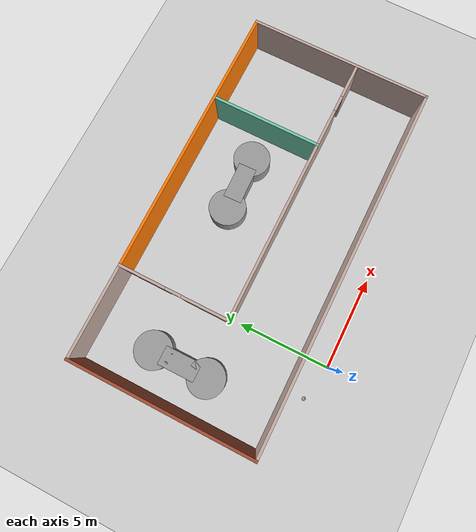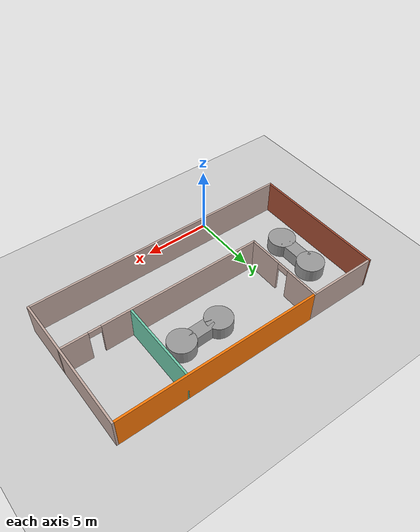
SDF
<sdf version="1.6">
 <world name="default">
  <plugin name="hello" filename="libhello.so"/>
  <light name="sun" type="directional">
   <pose>0 0 10 0 -0 0</pose>
   <diffuse>0.8 0.8 0.8 1</diffuse>
   <specular>0.2 0.2 0.2 1</specular>
   <attenuation>
    <range>1000</range>
    <constant>0.9</constant>
    <linear>0.01</linear>
    <quadratic>0.001</quadratic>
   </attenuation>
   <direction>-0.5 0.1 -0.9</direction>
  </light>
  <model name="ground_plane">
   <static>1</static>
   <link name="link">
    <collision name="collision">
     <geometry><plane><normal>0 0 1</normal><size>100 100</size></plane></geometry>
     <surface>
      <contact><collide_bitmask>65535</collide_bitmask></contact>
      <friction><ode><mu>100</mu><mu2>50</mu2></ode></friction>
     </surface>
    </collision>
    <visual name="visual">
     <cast_shadows>0</cast_shadows>
     <geometry><plane><normal>0 0 1</normal><size>100 100</size></plane></geometry>
     <material>
      <script><uri>file://media/materials/scripts/gazebo.material</uri><name>Gazebo/Grey</name></script>
     </material>
    </visual>
   </link>
  </model>
  <gravity>0 0 -9.8</gravity>
  <magnetic_field>6e-06 2.3e-05 -4.2e-05</magnetic_field>
  <atmosphere type="adiabatic"/>
  <physics name="default_physics" default="0" type="ode">
   <max_step_size>0.001</max_step_size>
   <real_time_factor>1</real_time_factor>
   <real_time_update_rate>1000</real_time_update_rate>
  </physics>
  <scene><ambient>0.4 0.4 0.4 1</ambient><background>0.7 0.7 0.7 1</background><shadows>1</shadows></scene>
  <spherical_coordinates>
   <surface_model>EARTH_WGS84</surface_model>
   <latitude_deg>0</latitude_deg>
   <longitude_deg>0</longitude_deg>
   <elevation>0</elevation>
   <heading_deg>0</heading_deg>
  </spherical_coordinates>
  <model name="house">
   <pose>4.80596 6.46709 0 0 -0 0</pose>
   <link name="Wall_0">
    <collision name="Wall_0_Collision">
     <geometry><box><size>10.15 0.15 2.5</size></box></geometry>
     <pose>0 0 1.25 0 -0 0</pose>
    </collision>
    <visual name="Wall_0_Visual">
     <pose>0 0 1.25 0 -0 0</pose>
     <geometry><box><size>10.15 0.15 2.5</size></box></geometry>
     <material>
      <script><uri>file://media/materials/scripts/gazebo.material</uri><name>Gazebo/Bricks</name></script>
      <ambient>0.760784 0.662745 0.627451 1</ambient>
     </material>
     <meta><layer>0</layer></meta>
    </visual>
    <pose>-10 0 0 0 -0 1.5708</pose>
   </link>
   <link name="Wall_11">
    <collision name="Wall_11_Collision">
     <geometry><box><size>15 0.15 2.5</size></box></geometry>
     <pose>0 0 1.25 0 -0 0</pose>
    </collision>
    <visual name="Wall_11_Visual">
     <pose>0 0 1.25 0 -0 0</pose>
     <geometry><box><size>15 0.15 2.5</size></box></geometry>
     <material>
      <script><uri>file://media/materials/scripts/gazebo.material</uri><name>Gazebo/Grey</name></script>
      <ambient>0.996078 0.47451 0.0196078 1</ambient>
     </material>
     <meta><layer>0</layer></meta>
    </visual>
    <pose>2.425 5 0 0 -0 0</pose>
   </link>
   <link name="Wall_13">
    <collision name="Wall_13_Collision">
     <geometry><box><size>5.15 0.15 2.5</size></box></geometry>
     <pose>0 0 1.25 0 -0 0</pose>
    </collision>
    <visual name="Wall_13_Visual">
     <pose>0 0 1.25 0 -0 0</pose>
     <geometry><box><size>5.15 0.15 2.5</size></box></geometry>
     <material>
      <script><uri>file://media/materials/scripts/gazebo.material</uri><name>Gazebo/Grey</name></script>
      <ambient>0.760784 0.662745 0.627451 1</ambient>
     </material>
     <meta><layer>0</layer></meta>
    </visual>
    <pose>-7.5 5 0 0 -0 0</pose>
   </link>
   <link name="Wall_15">
    <collision name="Wall_15_Collision">
     <geometry><box><size>6.15 0.15 2.5</size></box></geometry>
     <pose>0 0 1.25 0 -0 0</pose>
    </collision>
    <visual name="Wall_15_Visual">
     <pose>0 0 1.25 0 -0 0</pose>
     <geometry><box><size>6.15 0.15 2.5</size></box></geometry>
     <material>
      <script><uri>file://media/materials/scripts/gazebo.material</uri><name>Gazebo/Grey</name></script>
      <ambient>0.435294 0.796078 0.67451 1</ambient>
     </material>
     <meta><layer>0</layer></meta>
    </visual>
    <pose>5 2 0 0 0 -1.5708</pose>
   </link>
   <link name="Wall_2">
    <collision name="Wall_2_Collision">
     <geometry><box><size>20.15 0.15 2.5</size></box></geometry>
     <pose>0 0 1.25 0 -0 0</pose>
    </collision>
    <visual name="Wall_2_Visual">
     <pose>0 0 1.25 0 -0 0</pose>
     <geometry><box><size>20.15 0.15 2.5</size></box></geometry>
     <material>
      <script><uri>file://media/materials/scripts/gazebo.material</uri><name>Gazebo/Grey</name></script>
      <ambient>0.760784 0.662745 0.627451 1</ambient>
     </material>
     <meta><layer>0</layer></meta>
    </visual>
    <pose>0 -5 0 0 -0 0</pose>
   </link>
   <link name="Wall_4">
    <collision name="Wall_4_Collision">
     <geometry><box><size>10.15 0.15 2.5</size></box></geometry>
     <pose>0 0 1.25 0 -0 0</pose>
    </collision>
    <visual name="Wall_4_Visual">
     <pose>0 0 1.25 0 -0 0</pose>
     <geometry><box><size>10.15 0.15 2.5</size></box></geometry>
     <material>
      <script><uri>file://media/materials/scripts/gazebo.material</uri><name>Gazebo/Grey</name></script>
      <ambient>0.760784 0.662745 0.627451 1</ambient>
     </material>
     <meta><layer>0</layer></meta>
    </visual>
    <pose>10 0 0 0 -0 1.5708</pose>
   </link>
   <link name="Wall_6">
    <pose>2.5 -1 0 0 -0 0</pose>
    <visual name="Wall_6_Visual_0">
     <pose>-1.47053 0 1.25 0 -0 0</pose>
     <geometry><box><size>12.2089 0.15 2.5</size></box></geometry>
     <material>
      <script><uri>file://media/materials/scripts/gazebo.material</uri><name>Gazebo/Grey</name></script>
      <ambient>0.760784 0.662745 0.627451 1</ambient>
     </material>
     <meta><layer>0</layer></meta>
    </visual>
    <collision name="Wall_6_Collision_0">
     <geometry><box><size>12.2089 0.15 2.5</size></box></geometry>
     <pose>-1.47053 0 1.25 0 -0 0</pose>
    </collision>
    <visual name="Wall_6_Visual_1">
     <pose>6.55447 0 1.25 0 -0 0</pose>
     <geometry><box><size>2.04107 0.15 2.5</size></box></geometry>
     <material>
      <script><uri>file://media/materials/scripts/gazebo.material</uri><name>Gazebo/Grey</name></script>
      <ambient>0.760784 0.662745 0.627451 1</ambient>
     </material>
     <meta><layer>0</layer></meta>
    </visual>
    <collision name="Wall_6_Collision_1">
     <geometry><box><size>2.04107 0.15 2.5</size></box></geometry>
     <pose>6.55447 0 1.25 0 -0 0</pose>
    </collision>
    <visual name="Wall_6_Visual_2">
     <pose>5.08393 0 2.25 0 -0 0</pose>
     <geometry><box><size>0.9 0.15 0.5</size></box></geometry>
     <material>
      <script><uri>file://media/materials/scripts/gazebo.material</uri><name>Gazebo/Grey</name></script>
      <ambient>0.760784 0.662745 0.627451 1</ambient>
     </material>
     <meta><layer>0</layer></meta>
    </visual>
    <collision name="Wall_6_Collision_2">
     <geometry><box><size>0.9 0.15 0.5</size></box></geometry>
     <pose>5.08393 0 2.25 0 -0 0</pose>
    </collision>
   </link>
   <link name="Wall_8">
    <pose>-5 2 0 0 -0 1.5708</pose>
    <visual name="Wall_8_Visual_0">
     <pose>-1.7494 0 1.25 0 -0 0</pose>
     <geometry><box><size>2.65121 0.15 2.5</size></box></geometry>
     <material>
      <script><uri>file://media/materials/scripts/gazebo.material</uri><name>Gazebo/Grey</name></script>
      <ambient>0.760784 0.662745 0.627451 1</ambient>
     </material>
     <meta><layer>0</layer></meta>
    </visual>
    <collision name="Wall_8_Collision_0">
     <geometry><box><size>2.65121 0.15 2.5</size></box></geometry>
     <pose>-1.7494 0 1.25 0 -0 0</pose>
    </collision>
    <visual name="Wall_8_Visual_1">
     <pose>1.7756 0 1.25 0 -0 0</pose>
     <geometry><box><size>2.59879 0.15 2.5</size></box></geometry>
     <material>
      <script><uri>file://media/materials/scripts/gazebo.material</uri><name>Gazebo/Grey</name></script>
      <ambient>0.760784 0.662745 0.627451 1</ambient>
     </material>
     <meta><layer>0</layer></meta>
    </visual>
    <collision name="Wall_8_Collision_1">
     <geometry><box><size>2.59879 0.15 2.5</size></box></geometry>
     <pose>1.7756 0 1.25 0 -0 0</pose>
    </collision>
    <visual name="Wall_8_Visual_2">
     <pose>0.026206 0 2.25 0 -0 0</pose>
     <geometry><box><size>0.9 0.15 0.5</size></box></geometry>
     <material>
      <script><uri>file://media/materials/scripts/gazebo.material</uri><name>Gazebo/Grey</name></script>
      <ambient>0.760784 0.662745 0.627451 1</ambient>
     </material>
     <meta><layer>0</layer></meta>
    </visual>
    <collision name="Wall_8_Collision_2">
     <geometry><box><size>0.9 0.15 0.5</size></box></geometry>
     <pose>0.026206 0 2.25 0 -0 0</pose>
    </collision>
   </link>
   <static>1</static>
  </model>
  <model name="dogboneTable">
   <link name="link_0">
    <pose>0.0299 2.5 0 0 -0 0</pose>
    <inertial>
     <mass>1</mass>
     <inertia><ixx>0.145833</ixx><ixy>0</ixy><ixz>0</ixz><iyy>0.145833</iyy><iyz>0</iyz><izz>0.125</izz></inertia>
    </inertial>
    <visual name="visual">
     <geometry><cylinder><radius>1</radius><length>1</length></cylinder></geometry>
     <material>
      <lighting>1</lighting>
      <script><uri>file://media/materials/scripts/gazebo.material</uri><name>Gazebo/Grey</name></script>
      <shader type="pixel"><normal_map>__default__</normal_map></shader>
      <ambient>0.3 0.3 0.3 1</ambient>
      <diffuse>0.7 0.7 0.7 1</diffuse>
      <specular>0.01 0.01 0.01 1</specular>
      <emissive>0 0 0 1</emissive>
     </material>
    </visual>
    <collision name="collision">
     <geometry><cylinder><radius>1</radius><length>1</length></cylinder></geometry>
     <surface>
      <friction>
       <ode><mu>1</mu><mu2>1</mu2><fdir1>0 0 0</fdir1><slip1>0</slip1><slip2>0</slip2></ode>
       <torsional>
        <coefficient>1</coefficient>
        <patch_radius>0</patch_radius>
        <surface_radius>0</surface_radius>
        <use_patch_radius>1</use_patch_radius>
        <ode><slip>0</slip></ode>
       </torsional>
      </friction>
      <bounce><restitution_coefficient>0</restitution_coefficient><threshold>1e+06</threshold></bounce>
      <contact>
       <collide_without_contact>0</collide_without_contact>
       <collide_without_contact_bitmask>1</collide_without_contact_bitmask>
       <collide_bitmask>1</collide_bitmask>
       <ode>
        <soft_cfm>0</soft_cfm>
        <soft_erp>0.2</soft_erp>
        <kp>1e+13</kp>
        <kd>1</kd>
        <max_vel>0.01</max_vel>
        <min_depth>0</min_depth>
       </ode>
       <bullet>
        <split_impulse>1</split_impulse>
        <split_impulse_penetration_threshold>-0.01</split_impulse_penetration_threshold>
        <soft_cfm>0</soft_cfm>
        <soft_erp>0.2</soft_erp>
        <kp>1e+13</kp>
        <kd>1</kd>
       </bullet>
      </contact>
     </surface>
    </collision>
   </link>
   <link name="link_0_clone">
    <pose>0 -0.5 0 0 -0 0</pose>
    <inertial>
     <mass>1</mass>
     <inertia><ixx>0.145833</ixx><ixy>0</ixy><ixz>0</ixz><iyy>0.145833</iyy><iyz>0</iyz><izz>0.125</izz></inertia>
    </inertial>
    <visual name="visual">
     <geometry><cylinder><radius>1</radius><length>1</length></cylinder></geometry>
     <material>
      <lighting>1</lighting>
      <script><uri>file://media/materials/scripts/gazebo.material</uri><name>Gazebo/Grey</name></script>
      <shader type="pixel"><normal_map>__default__</normal_map></shader>
      <ambient>0.3 0.3 0.3 1</ambient>
      <diffuse>0.7 0.7 0.7 1</diffuse>
      <specular>0.01 0.01 0.01 1</specular>
      <emissive>0 0 0 1</emissive>
     </material>
    </visual>
    <collision name="collision">
     <geometry><cylinder><radius>1</radius><length>1</length></cylinder></geometry>
     <surface>
      <friction>
       <ode><mu>1</mu><mu2>1</mu2><fdir1>0 0 0</fdir1><slip1>0</slip1><slip2>0</slip2></ode>
       <torsional>
        <coefficient>1</coefficient>
        <patch_radius>0</patch_radius>
        <surface_radius>0</surface_radius>
        <use_patch_radius>1</use_patch_radius>
        <ode><slip>0</slip></ode>
       </torsional>
      </friction>
      <bounce><restitution_coefficient>0</restitution_coefficient><threshold>1e+06</threshold></bounce>
      <contact>
       <collide_without_contact>0</collide_without_contact>
       <collide_without_contact_bitmask>1</collide_without_contact_bitmask>
       <collide_bitmask>1</collide_bitmask>
       <ode>
        <soft_cfm>0</soft_cfm>
        <soft_erp>0.2</soft_erp>
        <kp>1e+13</kp>
        <kd>1</kd>
        <max_vel>0.01</max_vel>
        <min_depth>0</min_depth>
       </ode>
       <bullet>
        <split_impulse>1</split_impulse>
        <split_impulse_penetration_threshold>-0.01</split_impulse_penetration_threshold>
        <soft_cfm>0</soft_cfm>
        <soft_erp>0.2</soft_erp>
        <kp>1e+13</kp>
        <kd>1</kd>
       </bullet>
      </contact>
     </surface>
    </collision>
   </link>
   <link name="link_1">
    <pose>0.0299 1 0 0 -0 0</pose>
    <inertial>
     <mass>1</mass>
     <inertia>
      <ixx>0.166667</ixx>
      <ixy>0</ixy>
      <ixz>0</ixz>
      <iyy>0.166667</iyy>
      <iyz>0</iyz>
      <izz>0.166667</izz>
     </inertia>
    </inertial>
    <visual name="visual">
     <geometry><box><size>1 2 1</size></box></geometry>
     <material>
      <lighting>1</lighting>
      <script><uri>file://media/materials/scripts/gazebo.material</uri><name>Gazebo/Grey</name></script>
      <shader type="pixel"><normal_map>__default__</normal_map></shader>
      <ambient>0.3 0.3 0.3 1</ambient>
      <diffuse>0.7 0.7 0.7 1</diffuse>
      <specular>0.01 0.01 0.01 1</specular>
      <emissive>0 0 0 1</emissive>
     </material>
    </visual>
    <collision name="collision">
     <geometry><box><size>1 2 1</size></box></geometry>
     <surface>
      <friction>
       <ode><mu>1</mu><mu2>1</mu2><fdir1>0 0 0</fdir1><slip1>0</slip1><slip2>0</slip2></ode>
       <torsional>
        <coefficient>1</coefficient>
        <patch_radius>0</patch_radius>
        <surface_radius>0</surface_radius>
        <use_patch_radius>1</use_patch_radius>
        <ode><slip>0</slip></ode>
       </torsional>
      </friction>
      <bounce><restitution_coefficient>0</restitution_coefficient><threshold>1e+06</threshold></bounce>
      <contact>
       <collide_without_contact>0</collide_without_contact>
       <collide_without_contact_bitmask>1</collide_without_contact_bitmask>
       <collide_bitmask>1</collide_bitmask>
       <ode>
        <soft_cfm>0</soft_cfm>
        <soft_erp>0.2</soft_erp>
        <kp>1e+13</kp>
        <kd>1</kd>
        <max_vel>0.01</max_vel>
        <min_depth>0</min_depth>
       </ode>
       <bullet>
        <split_impulse>1</split_impulse>
        <split_impulse_penetration_threshold>-0.01</split_impulse_penetration_threshold>
        <soft_cfm>0</soft_cfm>
        <soft_erp>0.2</soft_erp>
        <kp>1e+13</kp>
        <kd>1</kd>
       </bullet>
      </contact>
     </surface>
    </collision>
   </link>
   <joint name="link_1_JOINT_0" type="fixed">
    <parent>link_1</parent>
    <child>link_0</child>
    <physics>
     <ode><limit><cfm>0</cfm><erp>0.2</erp></limit><suspension><cfm>0</cfm><erp>0.2</erp></suspension></ode>
    </physics>
   </joint>
   <joint name="link_1_JOINT_1" type="fixed">
    <parent>link_0</parent>
    <child>link_0_clone</child>
    <physics>
     <ode><limit><cfm>0</cfm><erp>0.2</erp></limit><suspension><cfm>0</cfm><erp>0.2</erp></suspension></ode>
    </physics>
   </joint>
   <static>0</static>
   <pose>-3.162 5.77244 0.500003 -4e-06 1e-06 0.002888</pose>
  </model>
  <model name="dogboneTable_clone">
   <link name="link_0">
    <pose>0.0299 2.5 0 0 -0 0</pose>
    <inertial>
     <mass>1</mass>
     <inertia><ixx>0.145833</ixx><ixy>0</ixy><ixz>0</ixz><iyy>0.145833</iyy><iyz>0</iyz><izz>0.125</izz></inertia>
    </inertial>
    <visual name="visual">
     <geometry><cylinder><radius>1</radius><length>1</length></cylinder></geometry>
     <material>
      <lighting>1</lighting>
      <script><uri>file://media/materials/scripts/gazebo.material</uri><name>Gazebo/Grey</name></script>
      <shader type="pixel"><normal_map>__default__</normal_map></shader>
      <ambient>0.3 0.3 0.3 1</ambient>
      <diffuse>0.7 0.7 0.7 1</diffuse>
      <specular>0.01 0.01 0.01 1</specular>
      <emissive>0 0 0 1</emissive>
     </material>
    </visual>
    <collision name="collision">
     <geometry><cylinder><radius>1</radius><length>1</length></cylinder></geometry>
     <surface>
      <friction>
       <ode><mu>1</mu><mu2>1</mu2><fdir1>0 0 0</fdir1><slip1>0</slip1><slip2>0</slip2></ode>
       <torsional>
        <coefficient>1</coefficient>
        <patch_radius>0</patch_radius>
        <surface_radius>0</surface_radius>
        <use_patch_radius>1</use_patch_radius>
        <ode><slip>0</slip></ode>
       </torsional>
      </friction>
      <bounce><restitution_coefficient>0</restitution_coefficient><threshold>1e+06</threshold></bounce>
      <contact>
       <collide_without_contact>0</collide_without_contact>
       <collide_without_contact_bitmask>1</collide_without_contact_bitmask>
       <collide_bitmask>1</collide_bitmask>
       <ode>
        <soft_cfm>0</soft_cfm>
        <soft_erp>0.2</soft_erp>
        <kp>1e+13</kp>
        <kd>1</kd>
        <max_vel>0.01</max_vel>
        <min_depth>0</min_depth>
       </ode>
       <bullet>
        <split_impulse>1</split_impulse>
        <split_impulse_penetration_threshold>-0.01</split_impulse_penetration_threshold>
        <soft_cfm>0</soft_cfm>
        <soft_erp>0.2</soft_erp>
        <kp>1e+13</kp>
        <kd>1</kd>
       </bullet>
      </contact>
     </surface>
    </collision>
   </link>
   <link name="link_0_clone">
    <pose>0 -0.5 0 0 -0 0</pose>
    <inertial>
     <mass>1</mass>
     <inertia><ixx>0.145833</ixx><ixy>0</ixy><ixz>0</ixz><iyy>0.145833</iyy><iyz>0</iyz><izz>0.125</izz></inertia>
    </inertial>
    <visual name="visual">
     <geometry><cylinder><radius>1</radius><length>1</length></cylinder></geometry>
     <material>
      <lighting>1</lighting>
      <script><uri>file://media/materials/scripts/gazebo.material</uri><name>Gazebo/Grey</name></script>
      <shader type="pixel"><normal_map>__default__</normal_map></shader>
      <ambient>0.3 0.3 0.3 1</ambient>
      <diffuse>0.7 0.7 0.7 1</diffuse>
      <specular>0.01 0.01 0.01 1</specular>
      <emissive>0 0 0 1</emissive>
     </material>
    </visual>
    <collision name="collision">
     <geometry><cylinder><radius>1</radius><length>1</length></cylinder></geometry>
     <surface>
      <friction>
       <ode><mu>1</mu><mu2>1</mu2><fdir1>0 0 0</fdir1><slip1>0</slip1><slip2>0</slip2></ode>
       <torsional>
        <coefficient>1</coefficient>
        <patch_radius>0</patch_radius>
        <surface_radius>0</surface_radius>
        <use_patch_radius>1</use_patch_radius>
        <ode><slip>0</slip></ode>
       </torsional>
      </friction>
      <bounce><restitution_coefficient>0</restitution_coefficient><threshold>1e+06</threshold></bounce>
      <contact>
       <collide_without_contact>0</collide_without_contact>
       <collide_without_contact_bitmask>1</collide_without_contact_bitmask>
       <collide_bitmask>1</collide_bitmask>
       <ode>
        <soft_cfm>0</soft_cfm>
        <soft_erp>0.2</soft_erp>
        <kp>1e+13</kp>
        <kd>1</kd>
        <max_vel>0.01</max_vel>
        <min_depth>0</min_depth>
       </ode>
       <bullet>
        <split_impulse>1</split_impulse>
        <split_impulse_penetration_threshold>-0.01</split_impulse_penetration_threshold>
        <soft_cfm>0</soft_cfm>
        <soft_erp>0.2</soft_erp>
        <kp>1e+13</kp>
        <kd>1</kd>
       </bullet>
      </contact>
     </surface>
    </collision>
   </link>
   <link name="link_1">
    <pose>0.0299 1 0 0 -0 0</pose>
    <inertial>
     <mass>1</mass>
     <inertia>
      <ixx>0.166667</ixx>
      <ixy>0</ixy>
      <ixz>0</ixz>
      <iyy>0.166667</iyy>
      <iyz>0</iyz>
      <izz>0.166667</izz>
     </inertia>
    </inertial>
    <visual name="visual">
     <geometry><box><size>1 2 1</size></box></geometry>
     <material>
      <lighting>1</lighting>
      <script><uri>file://media/materials/scripts/gazebo.material</uri><name>Gazebo/Grey</name></script>
      <shader type="pixel"><normal_map>__default__</normal_map></shader>
      <ambient>0.3 0.3 0.3 1</ambient>
      <diffuse>0.7 0.7 0.7 1</diffuse>
      <specular>0.01 0.01 0.01 1</specular>
      <emissive>0 0 0 1</emissive>
     </material>
    </visual>
    <collision name="collision">
     <geometry><box><size>1 2 1</size></box></geometry>
     <surface>
      <friction>
       <ode><mu>1</mu><mu2>1</mu2><fdir1>0 0 0</fdir1><slip1>0</slip1><slip2>0</slip2></ode>
       <torsional>
        <coefficient>1</coefficient>
        <patch_radius>0</patch_radius>
        <surface_radius>0</surface_radius>
        <use_patch_radius>1</use_patch_radius>
        <ode><slip>0</slip></ode>
       </torsional>
      </friction>
      <bounce><restitution_coefficient>0</restitution_coefficient><threshold>1e+06</threshold></bounce>
      <contact>
       <collide_without_contact>0</collide_without_contact>
       <collide_without_contact_bitmask>1</collide_without_contact_bitmask>
       <collide_bitmask>1</collide_bitmask>
       <ode>
        <soft_cfm>0</soft_cfm>
        <soft_erp>0.2</soft_erp>
        <kp>1e+13</kp>
        <kd>1</kd>
        <max_vel>0.01</max_vel>
        <min_depth>0</min_depth>
       </ode>
       <bullet>
        <split_impulse>1</split_impulse>
        <split_impulse_penetration_threshold>-0.01</split_impulse_penetration_threshold>
        <soft_cfm>0</soft_cfm>
        <soft_erp>0.2</soft_erp>
        <kp>1e+13</kp>
        <kd>1</kd>
       </bullet>
      </contact>
     </surface>
    </collision>
   </link>
   <joint name="link_1_JOINT_0" type="fixed">
    <parent>link_1</parent>
    <child>link_0</child>
    <physics>
     <ode><limit><cfm>0</cfm><erp>0.2</erp></limit><suspension><cfm>0</cfm><erp>0.2</erp></suspension></ode>
    </physics>
   </joint>
   <joint name="link_1_JOINT_1" type="fixed">
    <parent>link_0</parent>
    <child>link_0_clone</child>
    <physics>
     <ode><limit><cfm>0</cfm><erp>0.2</erp></limit><suspension><cfm>0</cfm><erp>0.2</erp></suspension></ode>
    </physics>
   </joint>
   <static>0</static>
   <pose>5.58543 8.35806 0.500003 -3e-06 0 -1.53933</pose>
  </model>
  <model name="my_ball">
   <link name="link_0">
    <inertial>
     <mass>1</mass>
     <inertia><ixx>0.1</ixx><ixy>0</ixy><ixz>0</ixz><iyy>0.1</iyy><iyz>0</iyz><izz>0.1</izz></inertia>
    </inertial>
    <visual name="visual">
     <geometry><sphere><radius>0.1</radius></sphere></geometry>
     <material>
      <lighting>1</lighting>
      <script><uri>file://media/materials/scripts/gazebo.material</uri><name>Gazebo/Grey</name></script>
      <shader type="pixel"><normal_map>__default__</normal_map></shader>
      <ambient>1 1 1 1</ambient>
      <diffuse>1 1 1 1</diffuse>
      <specular>1 1 1 1</specular>
      <emissive>1 1 1 1</emissive>
     </material>
    </visual>
    <collision name="collision">
     <geometry><sphere><radius>0.1</radius></sphere></geometry>
     <surface>
      <friction>
       <ode><mu>1</mu><mu2>1</mu2><fdir1>0 0 0</fdir1><slip1>0</slip1><slip2>0</slip2></ode>
       <torsional>
        <coefficient>1</coefficient>
        <patch_radius>0</patch_radius>
        <surface_radius>0</surface_radius>
        <use_patch_radius>1</use_patch_radius>
        <ode><slip>0</slip></ode>
       </torsional>
      </friction>
      <bounce><restitution_coefficient>0</restitution_coefficient><threshold>1e+06</threshold></bounce>
      <contact>
       <collide_without_contact>0</collide_without_contact>
       <collide_without_contact_bitmask>1</collide_without_contact_bitmask>
       <collide_bitmask>1</collide_bitmask>
       <ode>
        <soft_cfm>0</soft_cfm>
        <soft_erp>0.2</soft_erp>
        <kp>1e+13</kp>
        <kd>1</kd>
        <max_vel>0.01</max_vel>
        <min_depth>0</min_depth>
       </ode>
       <bullet>
        <split_impulse>1</split_impulse>
        <split_impulse_penetration_threshold>-0.01</split_impulse_penetration_threshold>
        <soft_cfm>0</soft_cfm>
        <soft_erp>0.2</soft_erp>
        <kp>1e+13</kp>
        <kd>1</kd>
       </bullet>
      </contact>
     </surface>
    </collision>
   </link>
   <static>0</static>
   <pose>-1.904 0.447137 0.1 0 -0 0</pose>
  </model>
  <plugin filename="libcollision_map_creator.so" name="collision_map_creator"/>
 </world>
</sdf>
